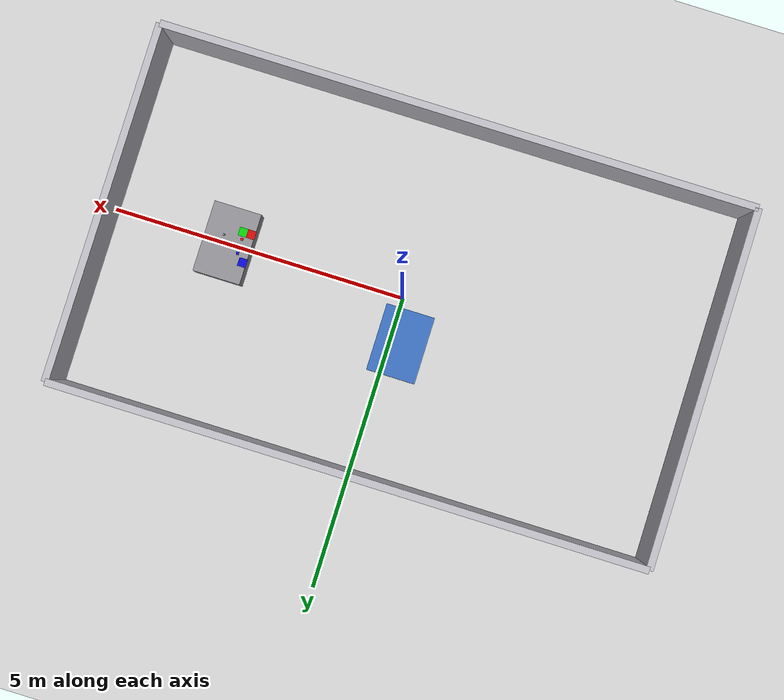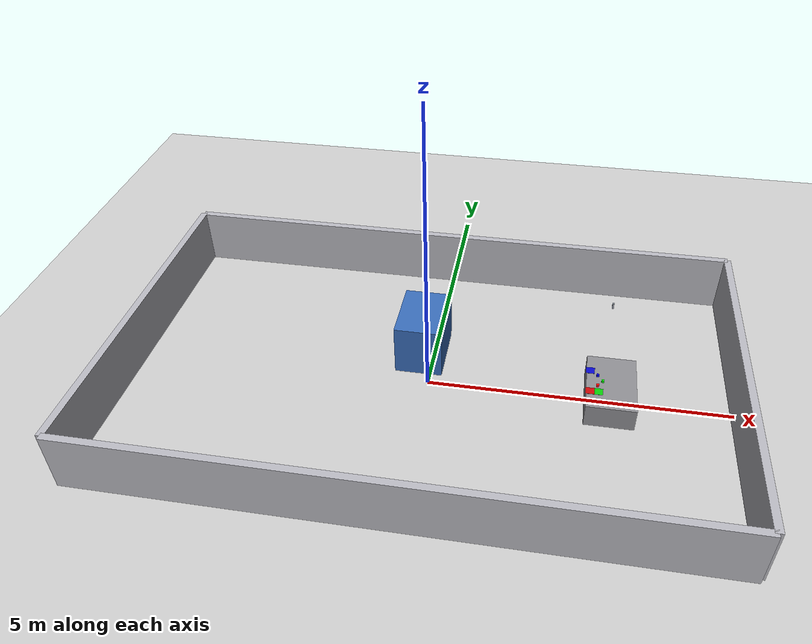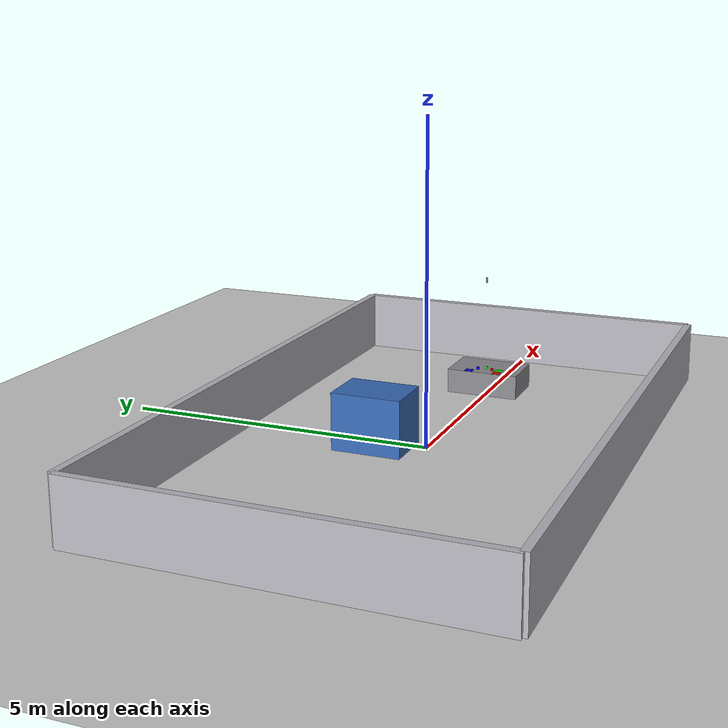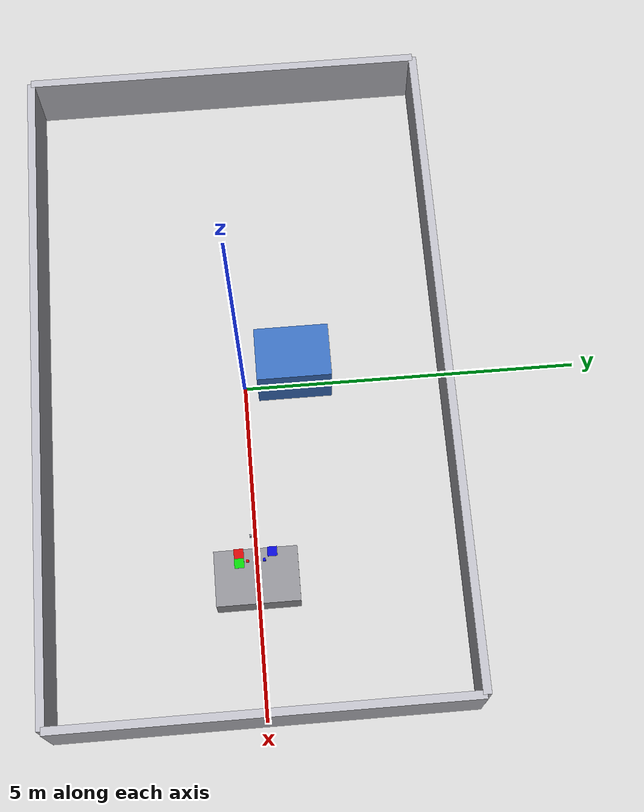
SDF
<?xml version="1.0"?>
<sdf version="1.6">
  <world name="aubo_navigation_sorting">
    <plugin name="aubo_mobile_sorting_grasp"
            filename="libaubo_grasp_attach_plugin.so">
      <robot_model>aubo_mobile_robot</robot_model>
      <palm_link>wrist3_Link</palm_link>
      <finger_link_1>Link1</finger_link_1>
      <finger_link_2>Link2</finger_link_2>
      <object_link>block_link</object_link>
      <max_attach_distance>0.18</max_attach_distance>
      <attach_topic>/sorting/grasp/attach</attach_topic>
      <detach_topic>/sorting/grasp/detach</detach_topic>
      <status_topic>/sorting/grasp/status</status_topic>
      <!-- In simulation, zero cmd_vel cannot resist arm/contact reaction
           forces. The grasp plugin also holds the chassis pose while this
           latched topic is true. -->
      <base_lock_topic>/sorting/base_locked</base_lock_topic>
      <!-- Gazebo collapses the fixed mobile_base_joint, so base_footprint is
           the canonical chassis rigid body exposed by Model::GetLink(). -->
      <base_link>base_footprint</base_link>
    </plugin>

    <include><uri>model://ground_plane</uri></include>
    <include><uri>model://sun</uri></include>

    <!-- This task owns its fixed overhead RGB-D camera.  It is centred above
         the source blocks, with no physical connection to the mobile robot. -->
    <model name="workspace_camera">
      <static>true</static>
      <pose>2.82 0 2.00 0 1.57079632679 0</pose>
      <link name="workspace_camera_link">
        <collision name="camera_body_collision">
          <geometry><box><size>0.090 0.025 0.025</size></box></geometry>
        </collision>
        <visual name="camera_body_visual">
          <geometry><box><size>0.090 0.025 0.025</size></box></geometry>
          <material><ambient>0.55 0.58 0.62 1</ambient><diffuse>0.55 0.58 0.62 1</diffuse></material>
        </visual>
        <sensor type="depth" name="workspace_camera_rgbd">
          <pose>0.045 0 0 0 0 0</pose>
          <always_on>true</always_on>
          <visualize>false</visualize>
          <update_rate>15</update_rate>
          <camera name="workspace_camera_sensor">
            <horizontal_fov>1.308996939</horizontal_fov>
            <image><width>640</width><height>480</height><format>R8G8B8</format></image>
            <clip><near>0.15</near><far>3.0</far></clip>
          </camera>
          <plugin name="workspace_camera_gazebo_ros_openni" filename="libgazebo_ros_openni_kinect.so">
            <cameraName>workspace_camera</cameraName>
            <imageTopicName>color/image_raw</imageTopicName>
            <cameraInfoTopicName>color/camera_info</cameraInfoTopicName>
            <depthImageTopicName>aligned_depth_to_color/image_raw</depthImageTopicName>
            <depthImageCameraInfoTopicName>aligned_depth_to_color/camera_info</depthImageCameraInfoTopicName>
            <pointCloudTopicName>depth/color/points</pointCloudTopicName>
            <frameName>workspace_camera_color_optical_frame</frameName>
            <pointCloudCutoff>0.15</pointCloudCutoff>
            <pointCloudCutoffMax>3.0</pointCloudCutoffMax>
          </plugin>
        </sensor>
      </link>
    </model>

    <!-- 10 x 6 m room. The robot starts at (-2.5, 0) and docks near (2.15, 0). -->
    <model name="boundary_walls">
      <static>true</static>
      <link name="walls_link">
        <collision name="north_collision"><pose>0 3 0.5 0 0 0</pose><geometry><box><size>10 0.12 1</size></box></geometry></collision>
        <visual name="north_visual"><pose>0 3 0.5 0 0 0</pose><geometry><box><size>10 0.12 1</size></box></geometry><material><ambient>0.72 0.72 0.75 1</ambient></material></visual>
        <collision name="south_collision"><pose>0 -3 0.5 0 0 0</pose><geometry><box><size>10 0.12 1</size></box></geometry></collision>
        <visual name="south_visual"><pose>0 -3 0.5 0 0 0</pose><geometry><box><size>10 0.12 1</size></box></geometry><material><ambient>0.72 0.72 0.75 1</ambient></material></visual>
        <collision name="east_collision"><pose>5 0 0.5 0 0 0</pose><geometry><box><size>0.12 6 1</size></box></geometry></collision>
        <visual name="east_visual"><pose>5 0 0.5 0 0 0</pose><geometry><box><size>0.12 6 1</size></box></geometry><material><ambient>0.72 0.72 0.75 1</ambient></material></visual>
        <collision name="west_collision"><pose>-5 0 0.5 0 0 0</pose><geometry><box><size>0.12 6 1</size></box></geometry></collision>
        <visual name="west_visual"><pose>-5 0 0.5 0 0 0</pose><geometry><box><size>0.12 6 1</size></box></geometry><material><ambient>0.72 0.72 0.75 1</ambient></material></visual>
      </link>
    </model>

    <!-- Forces the navigation planner to choose a path while leaving a wide aisle. -->
    <model name="route_obstacle">
      <static>true</static><pose>-0.2 0.75 0.45 0 0 0</pose>
      <link name="link">
        <collision name="collision"><geometry><box><size>0.8 1.1 0.9</size></box></geometry></collision>
        <visual name="visual"><geometry><box><size>0.8 1.1 0.9</size></box></geometry><material><ambient>0.22 0.42 0.72 1</ambient></material></visual>
      </link>
    </model>

    <!-- The dock leaves collision clearance while retaining the reference
         sorting scene's arm/table geometry to within 5 cm. -->
    <model name="sorting_table">
      <static>true</static><pose>3.00 0 0.25 0 0 0</pose>
      <link name="table_link">
        <collision name="collision"><geometry><box><size>0.80 1.20 0.40</size></box></geometry></collision>
        <visual name="visual"><geometry><box><size>0.80 1.20 0.40</size></box></geometry><material><ambient>0.45 0.45 0.47 1</ambient><diffuse>0.55 0.55 0.57 1</diffuse></material></visual>
      </link>
    </model>

    <model name="red_pad"><static>true</static><pose>2.66 -0.24 0.452 0 0 0</pose><link name="link"><visual name="visual"><geometry><box><size>0.14 0.14 0.004</size></box></geometry><material><ambient>0.45 0.02 0.02 1</ambient><diffuse>0.8 0.03 0.03 1</diffuse></material></visual></link></model>
    <model name="green_pad"><static>true</static><pose>2.80 -0.24 0.452 0 0 0</pose><link name="link"><visual name="visual"><geometry><box><size>0.14 0.14 0.004</size></box></geometry><material><ambient>0.02 0.40 0.02 1</ambient><diffuse>0.03 0.8 0.03 1</diffuse></material></visual></link></model>
    <model name="blue_pad"><static>true</static><pose>2.66 0.24 0.452 0 0 0</pose><link name="link"><visual name="visual"><geometry><box><size>0.14 0.14 0.004</size></box></geometry><material><ambient>0.02 0.02 0.45 1</ambient><diffuse>0.03 0.03 0.8 1</diffuse></material></visual></link></model>

    <model name="red_block">
      <pose>2.78 -0.12 0.470 0 0 0</pose><link name="block_link"><gravity>true</gravity><kinematic>false</kinematic>
        <inertial><mass>0.04</mass><inertia><ixx>0.000011</ixx><iyy>0.000011</iyy><izz>0.000011</izz></inertia></inertial>
        <collision name="collision"><max_contacts>20</max_contacts><geometry><box><size>0.04 0.04 0.04</size></box></geometry><surface><friction><ode><mu>20.0</mu><mu2>20.0</mu2></ode></friction><contact><ode><kp>1000000</kp><kd>100</kd><max_vel>0.01</max_vel><min_depth>0.001</min_depth></ode></contact></surface></collision>
        <visual name="visual"><geometry><box><size>0.04 0.04 0.04</size></box></geometry><material><ambient>0.8 0.02 0.02 1</ambient><diffuse>1 0.02 0.02 1</diffuse></material></visual>
      </link>
    </model>
    <model name="green_block">
      <pose>2.86 0 0.470 0 0 0</pose><link name="block_link"><gravity>true</gravity><kinematic>false</kinematic>
        <inertial><mass>0.04</mass><inertia><ixx>0.000011</ixx><iyy>0.000011</iyy><izz>0.000011</izz></inertia></inertial>
        <collision name="collision"><max_contacts>20</max_contacts><geometry><box><size>0.04 0.04 0.04</size></box></geometry><surface><friction><ode><mu>20.0</mu><mu2>20.0</mu2></ode></friction><contact><ode><kp>1000000</kp><kd>100</kd><max_vel>0.01</max_vel><min_depth>0.001</min_depth></ode></contact></surface></collision>
        <visual name="visual"><geometry><box><size>0.04 0.04 0.04</size></box></geometry><material><ambient>0.02 0.8 0.02 1</ambient><diffuse>0.02 1 0.02 1</diffuse></material></visual>
      </link>
    </model>
    <model name="blue_block">
      <pose>2.78 0.12 0.470 0 0 0</pose><link name="block_link"><gravity>true</gravity><kinematic>false</kinematic>
        <inertial><mass>0.04</mass><inertia><ixx>0.000011</ixx><iyy>0.000011</iyy><izz>0.000011</izz></inertia></inertial>
        <collision name="collision"><max_contacts>20</max_contacts><geometry><box><size>0.04 0.04 0.04</size></box></geometry><surface><friction><ode><mu>20.0</mu><mu2>20.0</mu2></ode></friction><contact><ode><kp>1000000</kp><kd>100</kd><max_vel>0.01</max_vel><min_depth>0.001</min_depth></ode></contact></surface></collision>
        <visual name="visual"><geometry><box><size>0.04 0.04 0.04</size></box></geometry><material><ambient>0.02 0.02 0.8 1</ambient><diffuse>0.02 0.02 1 1</diffuse></material></visual>
      </link>
    </model>

    <physics name="nav_sorting_physics" type="ode"><max_step_size>0.001</max_step_size><real_time_update_rate>1000</real_time_update_rate><ode><solver><type>quick</type><iters>150</iters><sor>1.3</sor></solver></ode></physics>
  </world>
</sdf>
